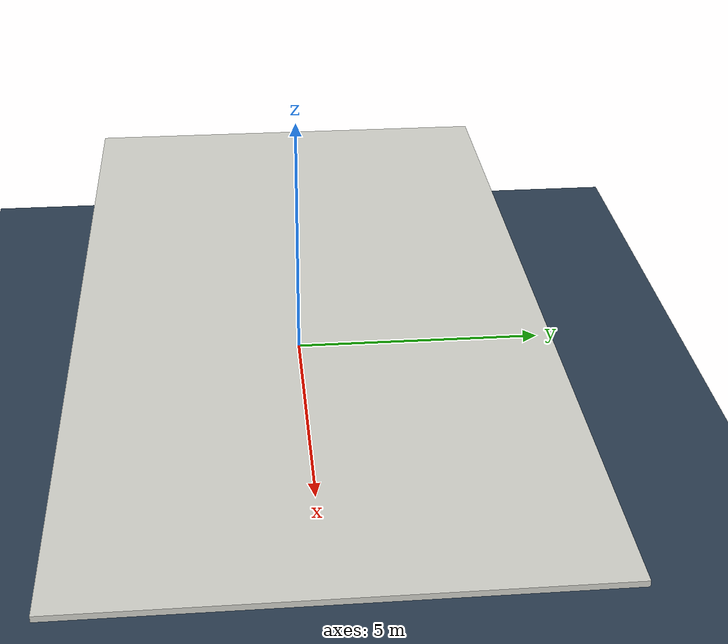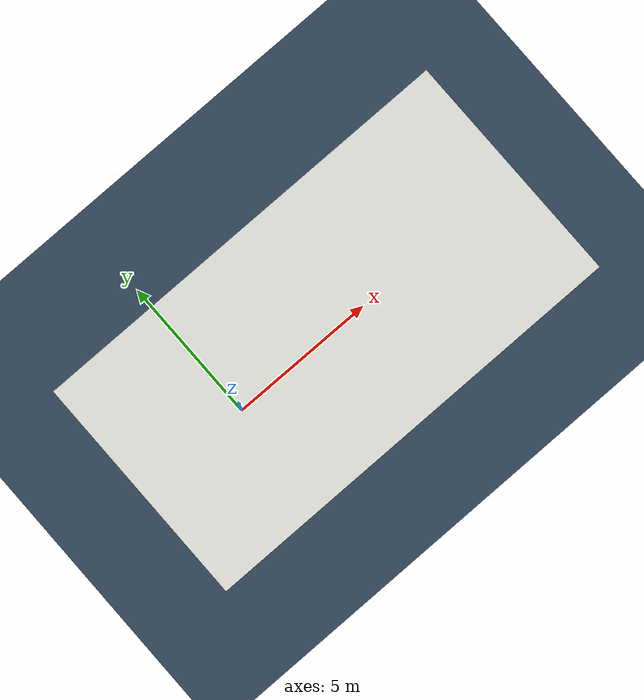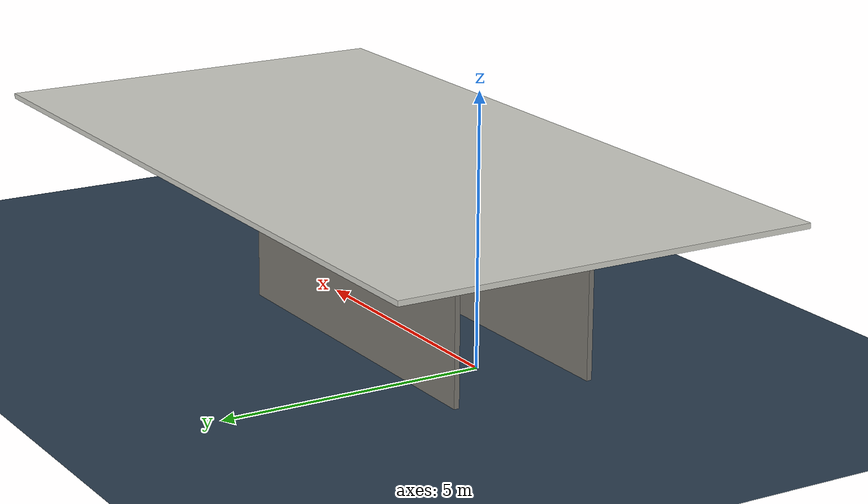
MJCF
<mujoco model="TinyRacer canonical_corridor">
  <option integrator="RK4" density="1.225" viscosity="1.8e-5" timestep="0.001"/>
  <compiler inertiafromgeom="false" autolimits="true" angle="degree"/>
  <statistic center="2.5 1.5 1.5" extent="7.5"/>
  <visual><headlight diffuse="0.58 0.58 0.58" ambient="0.38 0.38 0.38" specular="0 0 0"/><global azimuth="20" elevation="-25" ellipsoidinertia="true"/></visual>
  <asset>
    <texture type="skybox" builtin="gradient" rgb1="0.62 0.67 0.70" rgb2="0.24 0.28 0.31" width="512" height="3072"/>
    <texture type="2d" name="groundplane" builtin="checker" mark="edge" rgb1="0.22 0.30 0.38" rgb2="0.11 0.18 0.25" markrgb="0.8 0.8 0.8" width="512" height="512"/>
    <material name="groundplane" texture="groundplane" texuniform="true" texrepeat="3 3" reflectance="0.15"/>
    <material name="generic_ceiling" rgba="0.82 0.82 0.79 1" specular="0.04" shininess="0.08"/>
    <material name="generic_strip_light" rgba="1 0.98 0.86 1" emission="1" specular="0" shininess="0"/>
    <texture type="2d" name="newbeedrone_gate_texture" file="textures/newbeedrone_gate_front_rgba_v1.png"/>
    <material name="newbeedrone_gate" texture="newbeedrone_gate_texture" texuniform="false" texrepeat="1 1"/>
    <mesh name="newbeedrone_gate_top" file="meshes/newbeedrone_gate_top.obj" scale="1 0.9 0.9"/>
    <mesh name="newbeedrone_gate_bottom" file="meshes/newbeedrone_gate_bottom.obj" scale="1 0.9 0.9"/>
    <mesh name="newbeedrone_gate_left" file="meshes/newbeedrone_gate_left.obj" scale="1 0.9 0.9"/>
    <mesh name="newbeedrone_gate_right" file="meshes/newbeedrone_gate_right.obj" scale="1 0.9 0.9"/>
  </asset>
  <worldbody>
    <light pos="1 0 5" dir="0 0 -1" directional="true"/>
    <geom name="generic_ceiling" type="box" pos="3.5 0 3.05" size="7.5 4.0 0.05" material="generic_ceiling" contype="1" conaffinity="1"/>
    <geom name="generic_ceiling_strip" type="box" pos="3.5 0 2.985" size="7.0 0.055 0.015" material="generic_strip_light" contype="0" conaffinity="0"/>
    <light name="generic_strip_light_1" pos="-2 0 2.94" dir="0 0 -1" diffuse="0.85 0.82 0.72" cutoff="75" exponent="1" attenuation="0.25 0.08 0.02" castshadow="true"/>
    <light name="generic_strip_light_2" pos="2 0 2.94" dir="0 0 -1" diffuse="0.85 0.82 0.72" cutoff="75" exponent="1" attenuation="0.25 0.08 0.02" castshadow="true"/>
    <light name="generic_strip_light_3" pos="6 0 2.94" dir="0 0 -1" diffuse="0.85 0.82 0.72" cutoff="75" exponent="1" attenuation="0.25 0.08 0.02" castshadow="true"/>
    <light name="generic_strip_light_4" pos="10 0 2.94" dir="0 0 -1" diffuse="0.85 0.82 0.72" cutoff="75" exponent="1" attenuation="0.25 0.08 0.02" castshadow="true"/>
    <geom name="floor" size="0 0 0.05" type="plane" material="groundplane"/>
    <geom name="offset_box" type="box" pos="1.8 -0.24 1.5" size="0.12 0.27 0.36" rgba="0.75 0.23 0.13 1" contype="1" conaffinity="1"/>
    <geom name="wall_left" type="box" pos="2.0 1.35 1.5" size="3.5 0.05 1.5" rgba="0.48 0.47 0.44 1" contype="1" conaffinity="1"/>
    <geom name="wall_right" type="box" pos="2.0 -1.35 1.5" size="3.5 0.05 1.5" rgba="0.48 0.47 0.44 1" contype="1" conaffinity="1"/>
  </worldbody>
</mujoco>
